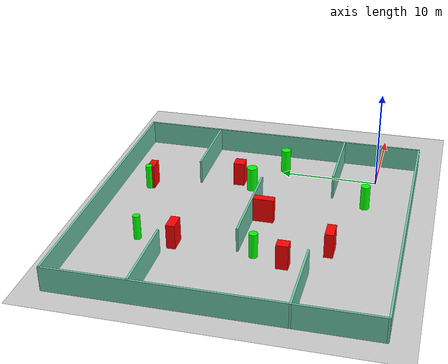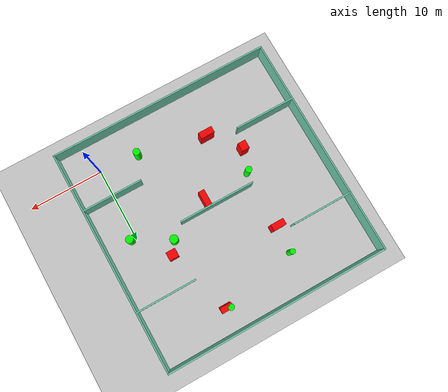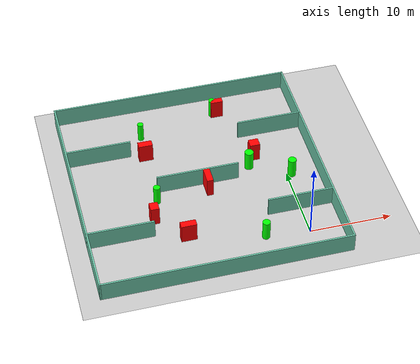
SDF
<sdf version="1.7">
 <world name="default">
  <light name="sun" type="directional">
   <pose>0 0 10 0 -0 0</pose>
   <diffuse>0.8 0.8 0.8 1</diffuse>
   <specular>0.2 0.2 0.2 1</specular>
   <attenuation>
    <range>1000</range>
    <constant>0.9</constant>
    <linear>0.01</linear>
    <quadratic>0.001</quadratic>
   </attenuation>
   <direction>-0.5 0.1 -0.9</direction>
   <spot><inner_angle>0</inner_angle><outer_angle>0</outer_angle><falloff>0</falloff></spot>
  </light>
  <model name="ground_plane">
   <static>1</static>
   <link name="link">
    <collision name="collision">
     <geometry><plane><normal>0 0 1</normal><size>100 100</size></plane></geometry>
     <surface>
      <contact><collide_bitmask>65535</collide_bitmask></contact>
      <friction><ode><mu>100</mu><mu2>50</mu2></ode></friction>
     </surface>
    </collision>
    <visual name="visual">
     <cast_shadows>0</cast_shadows>
     <geometry><plane><normal>0 0 1</normal><size>100 100</size></plane></geometry>
     <material>
      <script><uri>file://media/materials/scripts/gazebo.material</uri><name>Gazebo/Grey</name></script>
     </material>
    </visual>
   </link>
  </model>
  <gravity>0 0 -9.8</gravity>
  <magnetic_field>6e-06 2.3e-05 -4.2e-05</magnetic_field>
  <atmosphere type="adiabatic"/>
  <physics type="ode">
   <max_step_size>0.001</max_step_size>
   <real_time_factor>1</real_time_factor>
   <real_time_update_rate>1000</real_time_update_rate>
  </physics>
  <scene><ambient>0.4 0.4 0.4 1</ambient><background>0.7 0.7 0.7 1</background><shadows>1</shadows></scene>
  <spherical_coordinates>
   <surface_model>EARTH_WGS84</surface_model>
   <latitude_deg>0</latitude_deg>
   <longitude_deg>0</longitude_deg>
   <elevation>0</elevation>
   <heading_deg>0</heading_deg>
  </spherical_coordinates>
  <model name="my_base_walls">
   <link name="Wall_10">
    <collision name="Wall_10_Collision">
     <geometry><box><size>8.2 0.2 2.5</size></box></geometry>
     <pose>0 0 1.25 0 -0 0</pose>
    </collision>
    <visual name="Wall_10_Visual">
     <pose>0 0 1.25 0 -0 0</pose>
     <geometry><box><size>8.2 0.2 2.5</size></box></geometry>
     <material>
      <script><uri>file://media/materials/scripts/gazebo.material</uri><name>Gazebo/Grey</name></script>
      <ambient>0.435294 0.796078 0.67451 1</ambient>
     </material>
     <meta><layer>0</layer></meta>
    </visual>
    <pose>-11 -7 0 0 -0 0</pose>
   </link>
   <link name="Wall_12">
    <collision name="Wall_12_Collision">
     <geometry><box><size>8.2 0.2 2.5</size></box></geometry>
     <pose>0 0 1.25 0 -0 0</pose>
    </collision>
    <visual name="Wall_12_Visual">
     <pose>0 0 1.25 0 -0 0</pose>
     <geometry><box><size>8.2 0.2 2.5</size></box></geometry>
     <material>
      <script><uri>file://media/materials/scripts/gazebo.material</uri><name>Gazebo/Grey</name></script>
      <ambient>0.435294 0.796078 0.67451 1</ambient>
     </material>
     <meta><layer>0</layer></meta>
    </visual>
    <pose>-11 7 0 0 -0 0</pose>
   </link>
   <link name="Wall_14">
    <collision name="Wall_14_Collision">
     <geometry><box><size>8.2 0.2 2.5</size></box></geometry>
     <pose>0 0 1.25 0 -0 0</pose>
    </collision>
    <visual name="Wall_14_Visual">
     <pose>0 0 1.25 0 -0 0</pose>
     <geometry><box><size>8.2 0.2 2.5</size></box></geometry>
     <material>
      <script><uri>file://media/materials/scripts/gazebo.material</uri><name>Gazebo/Grey</name></script>
      <ambient>0.435294 0.796078 0.67451 1</ambient>
     </material>
     <meta><layer>0</layer></meta>
    </visual>
    <pose>11 7 0 0 -0 3.14159</pose>
   </link>
   <link name="Wall_16">
    <collision name="Wall_16_Collision">
     <geometry><box><size>10.2 0.2 2.5</size></box></geometry>
     <pose>0 0 1.25 0 -0 0</pose>
    </collision>
    <visual name="Wall_16_Visual">
     <pose>0 0 1.25 0 -0 0</pose>
     <geometry><box><size>10.2 0.2 2.5</size></box></geometry>
     <material>
      <script><uri>file://media/materials/scripts/gazebo.material</uri><name>Gazebo/Grey</name></script>
      <ambient>0.435294 0.796078 0.67451 1</ambient>
     </material>
     <meta><layer>0</layer></meta>
    </visual>
    <pose>0 0 0 0 -0 3.14159</pose>
   </link>
   <link name="Wall_2">
    <collision name="Wall_2_Collision">
     <geometry><box><size>30.2 0.2 2.5</size></box></geometry>
     <pose>0 0 1.25 0 -0 0</pose>
    </collision>
    <visual name="Wall_2_Visual">
     <pose>0 0 1.25 0 -0 0</pose>
     <geometry><box><size>30.2 0.2 2.5</size></box></geometry>
     <material>
      <script><uri>file://media/materials/scripts/gazebo.material</uri><name>Gazebo/Grey</name></script>
      <ambient>0.435294 0.796078 0.67451 1</ambient>
     </material>
     <meta><layer>0</layer></meta>
    </visual>
    <pose>0 -15 0 0 -0 3.14159</pose>
   </link>
   <link name="Wall_3">
    <collision name="Wall_3_Collision">
     <geometry><box><size>30.2 0.2 2.5</size></box></geometry>
     <pose>0 0 1.25 0 -0 0</pose>
    </collision>
    <visual name="Wall_3_Visual">
     <pose>0 0 1.25 0 -0 0</pose>
     <geometry><box><size>30.2 0.2 2.5</size></box></geometry>
     <material>
      <script><uri>file://media/materials/scripts/gazebo.material</uri><name>Gazebo/Grey</name></script>
      <ambient>0.435294 0.796078 0.67451 1</ambient>
     </material>
     <meta><layer>0</layer></meta>
    </visual>
    <pose>-15 0 0 0 -0 1.5708</pose>
   </link>
   <link name="Wall_4">
    <collision name="Wall_4_Collision">
     <geometry><box><size>30.2 0.2 2.5</size></box></geometry>
     <pose>0 0 1.25 0 -0 0</pose>
    </collision>
    <visual name="Wall_4_Visual">
     <pose>0 0 1.25 0 -0 0</pose>
     <geometry><box><size>30.2 0.2 2.5</size></box></geometry>
     <material>
      <script><uri>file://media/materials/scripts/gazebo.material</uri><name>Gazebo/Grey</name></script>
      <ambient>0.435294 0.796078 0.67451 1</ambient>
     </material>
     <meta><layer>0</layer></meta>
    </visual>
    <pose>0 15 0 0 -0 0</pose>
   </link>
   <link name="Wall_6">
    <collision name="Wall_6_Collision">
     <geometry><box><size>30.2 0.2 2.5</size></box></geometry>
     <pose>0 0 1.25 0 -0 0</pose>
    </collision>
    <visual name="Wall_6_Visual">
     <pose>0 0 1.25 0 -0 0</pose>
     <geometry><box><size>30.2 0.2 2.5</size></box></geometry>
     <material>
      <script><uri>file://media/materials/scripts/gazebo.material</uri><name>Gazebo/Grey</name></script>
      <ambient>0.435294 0.796078 0.67451 1</ambient>
     </material>
     <meta><layer>0</layer></meta>
    </visual>
    <pose>15 0 0 0 -0 1.5708</pose>
   </link>
   <link name="Wall_8">
    <collision name="Wall_8_Collision">
     <geometry><box><size>8.2 0.2 2.5</size></box></geometry>
     <pose>0 0 1.25 0 -0 0</pose>
    </collision>
    <visual name="Wall_8_Visual">
     <pose>0 0 1.25 0 -0 0</pose>
     <geometry><box><size>8.2 0.2 2.5</size></box></geometry>
     <material>
      <script><uri>file://media/materials/scripts/gazebo.material</uri><name>Gazebo/Grey</name></script>
      <ambient>0.435294 0.796078 0.67451 1</ambient>
     </material>
     <meta><layer>0</layer></meta>
    </visual>
    <pose>11 -7 0 0 -0 3.14159</pose>
   </link>
   <static>1</static>
   <pose>-11 11 0 0 -0 0</pose>
  </model>
  <model name="cylinder1">
   <static>1</static>
   <link name="link">
    <inertial>
     <mass>1</mass>
     <inertia><ixx>0.5</ixx><ixy>0</ixy><ixz>0</ixz><iyy>0.5</iyy><iyz>0</iyz><izz>1</izz></inertia>
    </inertial>
    <collision name="collision">
     <geometry><cylinder><radius>0.3636914678387442</radius><length>2.5</length></cylinder></geometry>
    </collision>
    <visual name="visual">
     <geometry><cylinder><radius>0.3636914678387442</radius><length>2.5</length></cylinder></geometry>
     <material>
      <ambient>0 1 0 1</ambient>
      <diffuse>0 1 0 1</diffuse>
      <specular>0.1 0.1 0.1 1</specular>
      <emissive>0 0 0 0</emissive>
     </material>
    </visual>
   </link>
   <pose>-16.0229833344982 20.789586423579145 1.25 0 0 0</pose>
  </model>
  <model name="cylinder2">
   <static>1</static>
   <link name="link">
    <inertial>
     <mass>1</mass>
     <inertia><ixx>0.5</ixx><ixy>0</ixy><ixz>0</ixz><iyy>0.5</iyy><iyz>0</iyz><izz>1</izz></inertia>
    </inertial>
    <collision name="collision">
     <geometry><cylinder><radius>0.4217372382917648</radius><length>2.5</length></cylinder></geometry>
    </collision>
    <visual name="visual">
     <geometry><cylinder><radius>0.4217372382917648</radius><length>2.5</length></cylinder></geometry>
     <material>
      <ambient>0 1 0 1</ambient>
      <diffuse>0 1 0 1</diffuse>
      <specular>0.1 0.1 0.1 1</specular>
      <emissive>0 0 0 0</emissive>
     </material>
    </visual>
   </link>
   <pose>-16.471270843349537 9.359332449558906 1.25 0 0 0</pose>
  </model>
  <model name="cylinder3">
   <static>1</static>
   <link name="link">
    <inertial>
     <mass>1</mass>
     <inertia><ixx>0.5</ixx><ixy>0</ixy><ixz>0</ixz><iyy>0.5</iyy><iyz>0</iyz><izz>1</izz></inertia>
    </inertial>
    <collision name="collision">
     <geometry><cylinder><radius>0.5494145126362978</radius><length>2.5</length></cylinder></geometry>
    </collision>
    <visual name="visual">
     <geometry><cylinder><radius>0.5494145126362978</radius><length>2.5</length></cylinder></geometry>
     <material>
      <ambient>0 1 0 1</ambient>
      <diffuse>0 1 0 1</diffuse>
      <specular>0.1 0.1 0.1 1</specular>
      <emissive>0 0 0 0</emissive>
     </material>
    </visual>
   </link>
   <pose>-4.136691675174422 12.441437735560681 1.25 0 0 0</pose>
  </model>
  <model name="cylinder4">
   <static>1</static>
   <link name="link">
    <inertial>
     <mass>1</mass>
     <inertia><ixx>0.5</ixx><ixy>0</ixy><ixz>0</ixz><iyy>0.5</iyy><iyz>0</iyz><izz>1</izz></inertia>
    </inertial>
    <collision name="collision">
     <geometry><cylinder><radius>0.4035121428075701</radius><length>2.5</length></cylinder></geometry>
    </collision>
    <visual name="visual">
     <geometry><cylinder><radius>0.4035121428075701</radius><length>2.5</length></cylinder></geometry>
     <material>
      <ambient>0 1 0 1</ambient>
      <diffuse>0 1 0 1</diffuse>
      <specular>0.1 0.1 0.1 1</specular>
      <emissive>0 0 0 0</emissive>
     </material>
    </visual>
   </link>
   <pose>-6.223218155964968 22.92668270382039 1.25 0 0 0</pose>
  </model>
  <model name="cylinder5">
   <static>1</static>
   <link name="link">
    <inertial>
     <mass>1</mass>
     <inertia><ixx>0.5</ixx><ixy>0</ixy><ixz>0</ixz><iyy>0.5</iyy><iyz>0</iyz><izz>1</izz></inertia>
    </inertial>
    <collision name="collision">
     <geometry><cylinder><radius>0.4695034742710218</radius><length>2.5</length></cylinder></geometry>
    </collision>
    <visual name="visual">
     <geometry><cylinder><radius>0.4695034742710218</radius><length>2.5</length></cylinder></geometry>
     <material>
      <ambient>0 1 0 1</ambient>
      <diffuse>0 1 0 1</diffuse>
      <specular>0.1 0.1 0.1 1</specular>
      <emissive>0 0 0 0</emissive>
     </material>
    </visual>
   </link>
   <pose>-5.307066716394363 0.5264542007515511 1.25 0 0 0</pose>
  </model>
  <model name="cylinder6">
   <static>1</static>
   <link name="link">
    <inertial>
     <mass>1</mass>
     <inertia><ixx>0.5</ixx><ixy>0</ixy><ixz>0</ixz><iyy>0.5</iyy><iyz>0</iyz><izz>1</izz></inertia>
    </inertial>
    <collision name="collision">
     <geometry><cylinder><radius>0.504464113590747</radius><length>2.5</length></cylinder></geometry>
    </collision>
    <visual name="visual">
     <geometry><cylinder><radius>0.504464113590747</radius><length>2.5</length></cylinder></geometry>
     <material>
      <ambient>0 1 0 1</ambient>
      <diffuse>0 1 0 1</diffuse>
      <specular>0.1 0.1 0.1 1</specular>
      <emissive>0 0 0 0</emissive>
     </material>
    </visual>
   </link>
   <pose>0.629047470633818 9.828320789601921 1.25 0 0 0</pose>
  </model>
  <model name="box1">
   <static>1</static>
   <link name="link">
    <inertial>
     <mass>1</mass>
     <inertia><ixx>0.083</ixx><ixy>0</ixy><ixz>0</ixz><iyy>0.083</iyy><iyz>0</iyz><izz>0.083</izz></inertia>
    </inertial>
    <collision name="collision">
     <geometry><box><size>1.5613749862125181 0.7375852133634605 2.5</size></box></geometry>
    </collision>
    <visual name="visual">
     <geometry><box><size>1.5613749862125181 0.7375852133634605 2.5</size></box></geometry>
     <material>
      <ambient>1 0 0 1</ambient>
      <diffuse>1 0 0 1</diffuse>
      <specular>0.1 0.1 0.1 1</specular>
      <emissive>0 0 0 0</emissive>
     </material>
    </visual>
    <sensor name="my_contact" type="contact">
     <contact><collision>box_collision</collision><topic>__default_topic__</topic></contact>
    </sensor>
   </link>
   <pose>-5.681166589804592 22.743431025538875 1.25 0 0 0</pose>
  </model>
  <model name="box2">
   <static>1</static>
   <link name="link">
    <inertial>
     <mass>1</mass>
     <inertia><ixx>0.083</ixx><ixy>0</ixy><ixz>0</ixz><iyy>0.083</iyy><iyz>0</iyz><izz>0.083</izz></inertia>
    </inertial>
    <collision name="collision">
     <geometry><box><size>1.0512394919854073 1.1614141608975146 2.5</size></box></geometry>
    </collision>
    <visual name="visual">
     <geometry><box><size>1.0512394919854073 1.1614141608975146 2.5</size></box></geometry>
     <material>
      <ambient>1 0 0 1</ambient>
      <diffuse>1 0 0 1</diffuse>
      <specular>0.1 0.1 0.1 1</specular>
      <emissive>0 0 0 0</emissive>
     </material>
    </visual>
    <sensor name="my_contact" type="contact">
     <contact><collision>box_collision</collision><topic>__default_topic__</topic></contact>
    </sensor>
   </link>
   <pose>-17.453350742810052 6.397047144260172 1.25 0 0 0</pose>
  </model>
  <model name="box3">
   <static>1</static>
   <link name="link">
    <inertial>
     <mass>1</mass>
     <inertia><ixx>0.083</ixx><ixy>0</ixy><ixz>0</ixz><iyy>0.083</iyy><iyz>0</iyz><izz>0.083</izz></inertia>
    </inertial>
    <collision name="collision">
     <geometry><box><size>0.7947794243130855 2.0643093230429854 2.5</size></box></geometry>
    </collision>
    <visual name="visual">
     <geometry><box><size>0.7947794243130855 2.0643093230429854 2.5</size></box></geometry>
     <material>
      <ambient>1 0 0 1</ambient>
      <diffuse>1 0 0 1</diffuse>
      <specular>0.1 0.1 0.1 1</specular>
      <emissive>0 0 0 0</emissive>
     </material>
    </visual>
    <sensor name="my_contact" type="contact">
     <contact><collision>box_collision</collision><topic>__default_topic__</topic></contact>
    </sensor>
   </link>
   <pose>-9.964086259687548 9.869696466502479 1.25 0 0 0</pose>
  </model>
  <model name="box4">
   <static>1</static>
   <link name="link">
    <inertial>
     <mass>1</mass>
     <inertia><ixx>0.083</ixx><ixy>0</ixy><ixz>0</ixz><iyy>0.083</iyy><iyz>0</iyz><izz>0.083</izz></inertia>
    </inertial>
    <collision name="collision">
     <geometry><box><size>1.8850707232936899 0.8589646243325015 2.5</size></box></geometry>
    </collision>
    <visual name="visual">
     <geometry><box><size>1.8850707232936899 0.8589646243325015 2.5</size></box></geometry>
     <material>
      <ambient>1 0 0 1</ambient>
      <diffuse>1 0 0 1</diffuse>
      <specular>0.1 0.1 0.1 1</specular>
      <emissive>0 0 0 0</emissive>
     </material>
    </visual>
    <sensor name="my_contact" type="contact">
     <contact><collision>box_collision</collision><topic>__default_topic__</topic></contact>
    </sensor>
   </link>
   <pose>-14.190345188102615 2.620065568205039 1.25 0 0 0</pose>
  </model>
  <model name="box5">
   <static>1</static>
   <link name="link">
    <inertial>
     <mass>1</mass>
     <inertia><ixx>0.083</ixx><ixy>0</ixy><ixz>0</ixz><iyy>0.083</iyy><iyz>0</iyz><izz>0.083</izz></inertia>
    </inertial>
    <collision name="collision">
     <geometry><box><size>1.2453491611928271 1.1210173223241984 2.5</size></box></geometry>
    </collision>
    <visual name="visual">
     <geometry><box><size>1.2453491611928271 1.1210173223241984 2.5</size></box></geometry>
     <material>
      <ambient>1 0 0 1</ambient>
      <diffuse>1 0 0 1</diffuse>
      <specular>0.1 0.1 0.1 1</specular>
      <emissive>0 0 0 0</emissive>
     </material>
    </visual>
    <sensor name="my_contact" type="contact">
     <contact><collision>box_collision</collision><topic>__default_topic__</topic></contact>
    </sensor>
   </link>
   <pose>-3.0826332289238785 13.989520468269063 1.25 0 0 0</pose>
  </model>
  <model name="box6">
   <static>1</static>
   <link name="link">
    <inertial>
     <mass>1</mass>
     <inertia><ixx>0.083</ixx><ixy>0</ixy><ixz>0</ixz><iyy>0.083</iyy><iyz>0</iyz><izz>0.083</izz></inertia>
    </inertial>
    <collision name="collision">
     <geometry><box><size>1.7553387701580254 0.8748742166001311 2.5</size></box></geometry>
    </collision>
    <visual name="visual">
     <geometry><box><size>1.7553387701580254 0.8748742166001311 2.5</size></box></geometry>
     <material>
      <ambient>1 0 0 1</ambient>
      <diffuse>1 0 0 1</diffuse>
      <specular>0.1 0.1 0.1 1</specular>
      <emissive>0 0 0 0</emissive>
     </material>
    </visual>
    <sensor name="my_contact" type="contact">
     <contact><collision>box_collision</collision><topic>__default_topic__</topic></contact>
    </sensor>
   </link>
   <pose>-16.200218961837926 17.130029807302417 1.25 0 0 0</pose>
  </model>
 </world>
</sdf>
